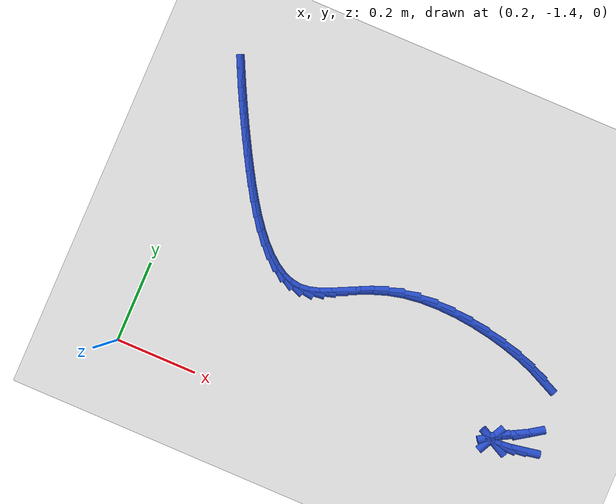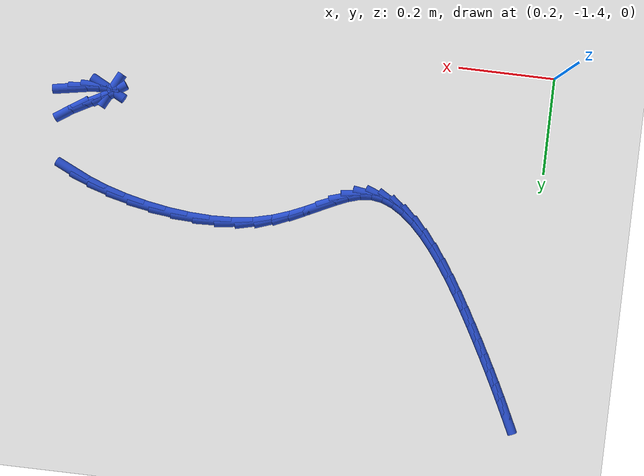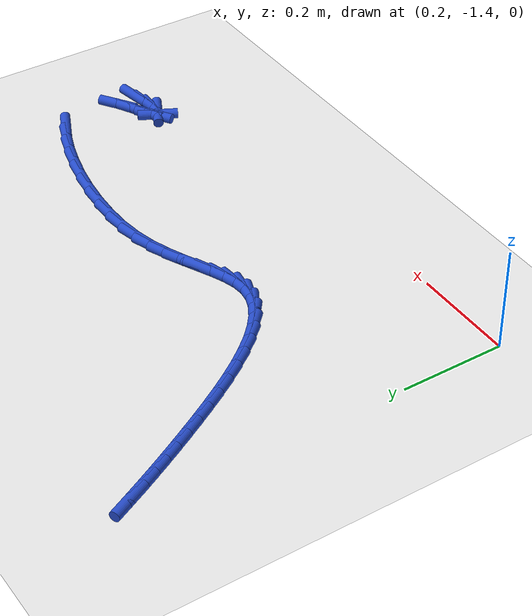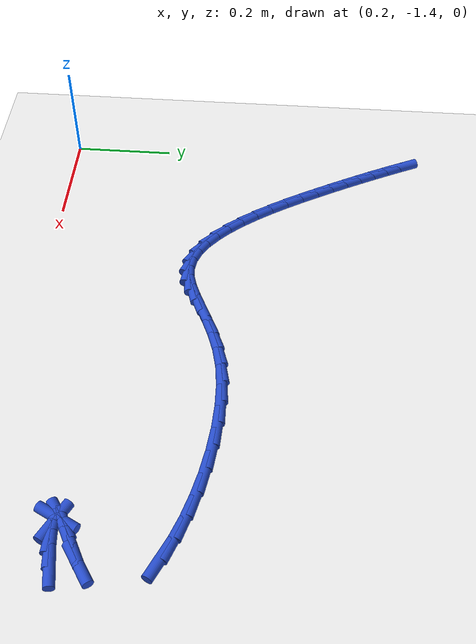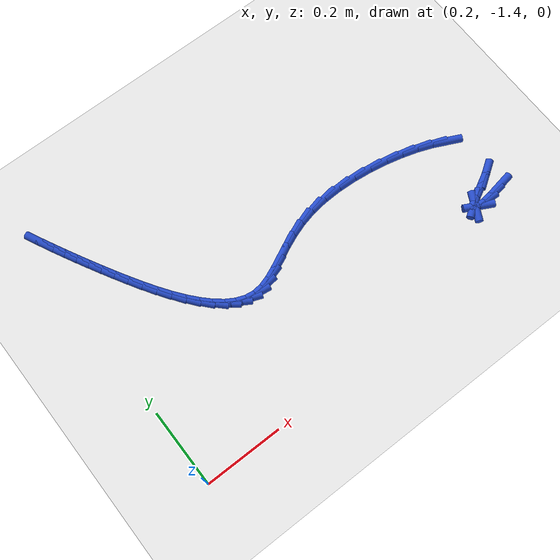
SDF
<sdf version="1.6">
 <world name="default">
  <model name="ground_plane">
   <static>1</static>
   <link name="link">
    <collision name="collision">
     <geometry><plane><normal>0 0 1</normal><size>100 100</size></plane></geometry>
     <surface><friction><ode><mu>100</mu><mu2>50</mu2></ode></friction></surface>
    </collision>
    <visual name="visual">
     <cast_shadows>0</cast_shadows>
     <geometry><plane><normal>0 0 1</normal><size>100 100</size></plane></geometry>
     <material>
      <script><uri>file://media/materials/scripts/gazebo.material</uri><name>Gazebo/WhiteGlow</name></script>
     </material>
    </visual>
   </link>
  </model>
  <model name="line">
   <link name="link_187">
    <pose>1.191309616961569 -1.2630237400490807 0.01 0 1.57 0.17707691168750558</pose>
    <collision name="collision">
     <geometry><cylinder><radius>0.01</radius><length>0.08</length></cylinder></geometry>
    </collision>
    <visual name="visual">
     <material>
      <script><name>Gazebo/Blue</name><uri>file://media/materials/scripts/gazebo.material</uri></script>
     </material>
     <geometry><cylinder><radius>0.01</radius><length>0.08</length></cylinder></geometry>
    </visual>
   </link>
   <link name="link_188">
    <pose>1.1593677288720559 -1.2687397807106846 0.01 0 1.57 0.10566307960177453</pose>
    <collision name="collision">
     <geometry><cylinder><radius>0.01</radius><length>0.08</length></cylinder></geometry>
    </collision>
    <visual name="visual">
     <material>
      <script><name>Gazebo/Blue</name><uri>file://media/materials/scripts/gazebo.material</uri></script>
     </material>
     <geometry><cylinder><radius>0.01</radius><length>0.08</length></cylinder></geometry>
    </visual>
   </link>
   <link name="link_189">
    <pose>1.1342848150735718 -1.2714000262739011 0.01 0 1.57 -0.029707009794796457</pose>
    <collision name="collision">
     <geometry><cylinder><radius>0.01</radius><length>0.08</length></cylinder></geometry>
    </collision>
    <visual name="visual">
     <material>
      <script><name>Gazebo/Blue</name><uri>file://media/materials/scripts/gazebo.material</uri></script>
     </material>
     <geometry><cylinder><radius>0.01</radius><length>0.08</length></cylinder></geometry>
    </visual>
   </link>
   <link name="link_190">
    <pose>1.1174234186374565 -1.270898977203138 0.01 0 1.57 -0.4777468391319427</pose>
    <collision name="collision">
     <geometry><cylinder><radius>0.01</radius><length>0.08</length></cylinder></geometry>
    </collision>
    <visual name="visual">
     <material>
      <script><name>Gazebo/Blue</name><uri>file://media/materials/scripts/gazebo.material</uri></script>
     </material>
     <geometry><cylinder><radius>0.01</radius><length>0.08</length></cylinder></geometry>
    </visual>
   </link>
   <link name="link_191">
    <pose>1.1101460826350518 -1.2671311339628026 0.01 0 1.57 1.0960960687855195</pose>
    <collision name="collision">
     <geometry><cylinder><radius>0.01</radius><length>0.08</length></cylinder></geometry>
    </collision>
    <visual name="visual">
     <material>
      <script><name>Gazebo/Blue</name><uri>file://media/materials/scripts/gazebo.material</uri></script>
     </material>
     <geometry><cylinder><radius>0.01</radius><length>0.08</length></cylinder></geometry>
    </visual>
   </link>
   <link name="link_192">
    <pose>1.1138153501376986 -1.259990997017302 0.01 0 1.57 0.5875301723997813</pose>
    <collision name="collision">
     <geometry><cylinder><radius>0.01</radius><length>0.08</length></cylinder></geometry>
    </collision>
    <visual name="visual">
     <material>
      <script><name>Gazebo/Blue</name><uri>file://media/materials/scripts/gazebo.material</uri></script>
     </material>
     <geometry><cylinder><radius>0.01</radius><length>0.08</length></cylinder></geometry>
    </visual>
   </link>
   <link name="link_193">
    <pose>1.1297514645753715 -1.2493777921155462 0.01 0 1.57 0.48207216692930877</pose>
    <collision name="collision">
     <geometry><cylinder><radius>0.01</radius><length>0.08</length></cylinder></geometry>
    </collision>
    <visual name="visual">
     <material>
      <script><name>Gazebo/Blue</name><uri>file://media/materials/scripts/gazebo.material</uri></script>
     </material>
     <geometry><cylinder><radius>0.01</radius><length>0.08</length></cylinder></geometry>
    </visual>
   </link>
   <link name="link_194">
    <pose>1.1562108048918047 -1.235533008697291 0.01 0 1.57 0.49464793670784096</pose>
    <collision name="collision">
     <geometry><cylinder><radius>0.01</radius><length>0.08</length></cylinder></geometry>
    </collision>
    <visual name="visual">
     <material>
      <script><name>Gazebo/Blue</name><uri>file://media/materials/scripts/gazebo.material</uri></script>
     </material>
     <geometry><cylinder><radius>0.01</radius><length>0.08</length></cylinder></geometry>
    </visual>
   </link>
   <link name="link_195">
    <pose>1.1863708173578504 -1.2192655027584773 0.01 0 1.57 0.5911538326314956</pose>
    <collision name="collision">
     <geometry><cylinder><radius>0.01</radius><length>0.08</length></cylinder></geometry>
    </collision>
    <visual name="visual">
     <material>
      <script><name>Gazebo/Blue</name><uri>file://media/materials/scripts/gazebo.material</uri></script>
     </material>
     <geometry><cylinder><radius>0.01</radius><length>0.08</length></cylinder></geometry>
    </visual>
   </link>
   <link name="link_202">
    <pose>1.1685086502630184 -1.0914842201221167 0.01 0 1.57 -0.438989581454728</pose>
    <collision name="collision">
     <geometry><cylinder><radius>0.01</radius><length>0.08</length></cylinder></geometry>
    </collision>
    <visual name="visual">
     <material>
      <script><name>Gazebo/Blue</name><uri>file://media/materials/scripts/gazebo.material</uri></script>
     </material>
     <geometry><cylinder><radius>0.01</radius><length>0.08</length></cylinder></geometry>
    </visual>
   </link>
   <link name="link_203">
    <pose>1.1349035236105796 -1.0757050420589882 0.01 0 1.57 -0.35557899221338407</pose>
    <collision name="collision">
     <geometry><cylinder><radius>0.01</radius><length>0.08</length></cylinder></geometry>
    </collision>
    <visual name="visual">
     <material>
      <script><name>Gazebo/Blue</name><uri>file://media/materials/scripts/gazebo.material</uri></script>
     </material>
     <geometry><cylinder><radius>0.01</radius><length>0.08</length></cylinder></geometry>
    </visual>
   </link>
   <link name="link_204">
    <pose>1.0966115000541528 -1.061484769458979 0.01 0 1.57 -0.2864356140167228</pose>
    <collision name="collision">
     <geometry><cylinder><radius>0.01</radius><length>0.08</length></cylinder></geometry>
    </collision>
    <visual name="visual">
     <material>
      <script><name>Gazebo/Blue</name><uri>file://media/materials/scripts/gazebo.material</uri></script>
     </material>
     <geometry><cylinder><radius>0.01</radius><length>0.08</length></cylinder></geometry>
    </visual>
   </link>
   <link name="link_205">
    <pose>1.0546823473897018 -1.0491351623092955 0.01 0 1.57 -0.22453991720115676</pose>
    <collision name="collision">
     <geometry><cylinder><radius>0.01</radius><length>0.08</length></cylinder></geometry>
    </collision>
    <visual name="visual">
     <material>
      <script><name>Gazebo/Blue</name><uri>file://media/materials/scripts/gazebo.material</uri></script>
     </material>
     <geometry><cylinder><radius>0.01</radius><length>0.08</length></cylinder></geometry>
    </visual>
   </link>
   <link name="link_206">
    <pose>1.0101658334131878 -1.0389679805971421 0.01 0 1.57 -0.16509188198484792</pose>
    <collision name="collision">
     <geometry><cylinder><radius>0.01</radius><length>0.08</length></cylinder></geometry>
    </collision>
    <visual name="visual">
     <material>
      <script><name>Gazebo/Blue</name><uri>file://media/materials/scripts/gazebo.material</uri></script>
     </material>
     <geometry><cylinder><radius>0.01</radius><length>0.08</length></cylinder></geometry>
    </visual>
   </link>
   <link name="link_207">
    <pose>0.964111725920573 -1.0312949843097243 0.01 0 1.57 -0.10419474783202996</pose>
    <collision name="collision">
     <geometry><cylinder><radius>0.01</radius><length>0.08</length></cylinder></geometry>
    </collision>
    <visual name="visual">
     <material>
      <script><name>Gazebo/Blue</name><uri>file://media/materials/scripts/gazebo.material</uri></script>
     </material>
     <geometry><cylinder><radius>0.01</radius><length>0.08</length></cylinder></geometry>
    </visual>
   </link>
   <link name="link_208">
    <pose>0.9175697927078199 -1.026427933434248 0.01 0 1.57 -0.03802745751433778</pose>
    <collision name="collision">
     <geometry><cylinder><radius>0.01</radius><length>0.08</length></cylinder></geometry>
    </collision>
    <visual name="visual">
     <material>
      <script><name>Gazebo/Blue</name><uri>file://media/materials/scripts/gazebo.material</uri></script>
     </material>
     <geometry><cylinder><radius>0.01</radius><length>0.08</length></cylinder></geometry>
    </visual>
   </link>
   <link name="link_209">
    <pose>0.8715898015708904 -1.024678587957918 0.01 0 1.57 0.03784950601155159</pose>
    <collision name="collision">
     <geometry><cylinder><radius>0.01</radius><length>0.08</length></cylinder></geometry>
    </collision>
    <visual name="visual">
     <material>
      <script><name>Gazebo/Blue</name><uri>file://media/materials/scripts/gazebo.material</uri></script>
     </material>
     <geometry><cylinder><radius>0.01</radius><length>0.08</length></cylinder></geometry>
    </visual>
   </link>
   <link name="link_210">
    <pose>0.8272215203057466 -1.02635870786794 0.01 0 1.57 0.1292622909140999</pose>
    <collision name="collision">
     <geometry><cylinder><radius>0.01</radius><length>0.08</length></cylinder></geometry>
    </collision>
    <visual name="visual">
     <material>
      <script><name>Gazebo/Blue</name><uri>file://media/materials/scripts/gazebo.material</uri></script>
     </material>
     <geometry><cylinder><radius>0.01</radius><length>0.08</length></cylinder></geometry>
    </visual>
   </link>
   <link name="link_211">
    <pose>0.7855147167083507 -1.031780053151519 0.01 0 1.57 0.23842669479757814</pose>
    <collision name="collision">
     <geometry><cylinder><radius>0.01</radius><length>0.08</length></cylinder></geometry>
    </collision>
    <visual name="visual">
     <material>
      <script><name>Gazebo/Blue</name><uri>file://media/materials/scripts/gazebo.material</uri></script>
     </material>
     <geometry><cylinder><radius>0.01</radius><length>0.08</length></cylinder></geometry>
    </visual>
   </link>
   <link name="link_212">
    <pose>0.7473364170805895 -1.041059281948171 0.01 0 1.57 0.3373506468126488</pose>
    <collision name="collision">
     <geometry><cylinder><radius>0.01</radius><length>0.08</length></cylinder></geometry>
    </collision>
    <visual name="visual">
     <material>
      <script><name>Gazebo/Blue</name><uri>file://media/materials/scripts/gazebo.material</uri></script>
     </material>
     <geometry><cylinder><radius>0.01</radius><length>0.08</length></cylinder></geometry>
    </visual>
   </link>
   <link name="link_213">
    <pose>0.7125636803930756 -1.053256125198358 0.01 0 1.57 0.40963877665692805</pose>
    <collision name="collision">
     <geometry><cylinder><radius>0.01</radius><length>0.08</length></cylinder></geometry>
    </collision>
    <visual name="visual">
     <material>
      <script><name>Gazebo/Blue</name><uri>file://media/materials/scripts/gazebo.material</uri></script>
     </material>
     <geometry><cylinder><radius>0.01</radius><length>0.08</length></cylinder></geometry>
    </visual>
   </link>
   <link name="link_214">
    <pose>0.6807398924847069 -1.0670740715733633 0.01 0 1.57 0.44926543091611565</pose>
    <collision name="collision">
     <geometry><cylinder><radius>0.01</radius><length>0.08</length></cylinder></geometry>
    </collision>
    <visual name="visual">
     <material>
      <script><name>Gazebo/Blue</name><uri>file://media/materials/scripts/gazebo.material</uri></script>
     </material>
     <geometry><cylinder><radius>0.01</radius><length>0.08</length></cylinder></geometry>
    </visual>
   </link>
   <link name="link_215">
    <pose>0.6514081841782332 -1.0812163374794252 0.01 0 1.57 0.4495273153882222</pose>
    <collision name="collision">
     <geometry><cylinder><radius>0.01</radius><length>0.08</length></cylinder></geometry>
    </collision>
    <visual name="visual">
     <material>
      <script><name>Gazebo/Blue</name><uri>file://media/materials/scripts/gazebo.material</uri></script>
     </material>
     <geometry><cylinder><radius>0.01</radius><length>0.08</length></cylinder></geometry>
    </visual>
   </link>
   <link name="link_216">
    <pose>0.624111686296405 -1.0943861393227827 0.01 0 1.57 0.4008933327329005</pose>
    <collision name="collision">
     <geometry><cylinder><radius>0.01</radius><length>0.08</length></cylinder></geometry>
    </collision>
    <visual name="visual">
     <material>
      <script><name>Gazebo/Blue</name><uri>file://media/materials/scripts/gazebo.material</uri></script>
     </material>
     <geometry><cylinder><radius>0.01</radius><length>0.08</length></cylinder></geometry>
    </visual>
   </link>
   <link name="link_217">
    <pose>0.5983935296619729 -1.1052866935096732 0.01 0 1.57 0.2897968204894617</pose>
    <collision name="collision">
     <geometry><cylinder><radius>0.01</radius><length>0.08</length></cylinder></geometry>
    </collision>
    <visual name="visual">
     <material>
      <script><name>Gazebo/Blue</name><uri>file://media/materials/scripts/gazebo.material</uri></script>
     </material>
     <geometry><cylinder><radius>0.01</radius><length>0.08</length></cylinder></geometry>
    </visual>
   </link>
   <link name="link_218">
    <pose>0.5737968450976878 -1.112621216446336 0.01 0 1.57 0.10291522307038281</pose>
    <collision name="collision">
     <geometry><cylinder><radius>0.01</radius><length>0.08</length></cylinder></geometry>
    </collision>
    <visual name="visual">
     <material>
      <script><name>Gazebo/Blue</name><uri>file://media/materials/scripts/gazebo.material</uri></script>
     </material>
     <geometry><cylinder><radius>0.01</radius><length>0.08</length></cylinder></geometry>
    </visual>
   </link>
   <link name="link_219">
    <pose>0.5498647634263001 -1.1150929245390084 0.01 0 1.57 -0.14310655217692475</pose>
    <collision name="collision">
     <geometry><cylinder><radius>0.01</radius><length>0.08</length></cylinder></geometry>
    </collision>
    <visual name="visual">
     <material>
      <script><name>Gazebo/Blue</name><uri>file://media/materials/scripts/gazebo.material</uri></script>
     </material>
     <geometry><cylinder><radius>0.01</radius><length>0.08</length></cylinder></geometry>
    </visual>
   </link>
   <link name="link_220">
    <pose>0.5262163949304122 -1.1116853947526364 0.01 0 1.57 -0.3682115571568557</pose>
    <collision name="collision">
     <geometry><cylinder><radius>0.01</radius><length>0.08</length></cylinder></geometry>
    </collision>
    <visual name="visual">
     <material>
      <script><name>Gazebo/Blue</name><uri>file://media/materials/scripts/gazebo.material</uri></script>
     </material>
     <geometry><cylinder><radius>0.01</radius><length>0.08</length></cylinder></geometry>
    </visual>
   </link>
   <link name="link_221">
    <pose>0.5028164736548678 -1.1026575391397306 0.01 0 1.57 -0.5459334276250387</pose>
    <collision name="collision">
     <geometry><cylinder><radius>0.01</radius><length>0.08</length></cylinder></geometry>
    </collision>
    <visual name="visual">
     <material>
      <script><name>Gazebo/Blue</name><uri>file://media/materials/scripts/gazebo.material</uri></script>
     </material>
     <geometry><cylinder><radius>0.01</radius><length>0.08</length></cylinder></geometry>
    </visual>
   </link>
   <link name="link_222">
    <pose>0.47972795830577364 -1.0886307140366165 0.01 0 1.57 -0.6809671573474669</pose>
    <collision name="collision">
     <geometry><cylinder><radius>0.01</radius><length>0.08</length></cylinder></geometry>
    </collision>
    <visual name="visual">
     <material>
      <script><name>Gazebo/Blue</name><uri>file://media/materials/scripts/gazebo.material</uri></script>
     </material>
     <geometry><cylinder><radius>0.01</radius><length>0.08</length></cylinder></geometry>
    </visual>
   </link>
   <link name="link_223">
    <pose>0.4570138143910353 -1.0702263008779314 0.01 0 1.57 -0.7827835446719937</pose>
    <collision name="collision">
     <geometry><cylinder><radius>0.01</radius><length>0.08</length></cylinder></geometry>
    </collision>
    <visual name="visual">
     <material>
      <script><name>Gazebo/Blue</name><uri>file://media/materials/scripts/gazebo.material</uri></script>
     </material>
     <geometry><cylinder><radius>0.01</radius><length>0.08</length></cylinder></geometry>
    </visual>
   </link>
   <link name="link_224">
    <pose>0.43473700741855836 -1.0480656810983124 0.01 0 1.57 -0.8600160008149283</pose>
    <collision name="collision">
     <geometry><cylinder><radius>0.01</radius><length>0.08</length></cylinder></geometry>
    </collision>
    <visual name="visual">
     <material>
      <script><name>Gazebo/Blue</name><uri>file://media/materials/scripts/gazebo.material</uri></script>
     </material>
     <geometry><cylinder><radius>0.01</radius><length>0.08</length></cylinder></geometry>
    </visual>
   </link>
   <link name="link_225">
    <pose>0.41296050289624897 -1.0227702361323967 0.01 0 1.57 -0.919139413442212</pose>
    <collision name="collision">
     <geometry><cylinder><radius>0.01</radius><length>0.08</length></cylinder></geometry>
    </collision>
    <visual name="visual">
     <material>
      <script><name>Gazebo/Blue</name><uri>file://media/materials/scripts/gazebo.material</uri></script>
     </material>
     <geometry><cylinder><radius>0.01</radius><length>0.08</length></cylinder></geometry>
    </visual>
   </link>
   <link name="link_226">
    <pose>0.39174726633201257 -0.9949613474148208 0.01 0 1.57 -0.9646872887889297</pose>
    <collision name="collision">
     <geometry><cylinder><radius>0.01</radius><length>0.08</length></cylinder></geometry>
    </collision>
    <visual name="visual">
     <material>
      <script><name>Gazebo/Blue</name><uri>file://media/materials/scripts/gazebo.material</uri></script>
     </material>
     <geometry><cylinder><radius>0.01</radius><length>0.08</length></cylinder></geometry>
    </visual>
   </link>
   <link name="link_227">
    <pose>0.37116026323375484 -0.9652603963802213 0.01 0 1.57 -0.9997451768950334</pose>
    <collision name="collision">
     <geometry><cylinder><radius>0.01</radius><length>0.08</length></cylinder></geometry>
    </collision>
    <visual name="visual">
     <material>
      <script><name>Gazebo/Blue</name><uri>file://media/materials/scripts/gazebo.material</uri></script>
     </material>
     <geometry><cylinder><radius>0.01</radius><length>0.08</length></cylinder></geometry>
    </visual>
   </link>
   <link name="link_228">
    <pose>0.35126245910938186 -0.9342887644632365 0.01 0 1.57 -1.0263618263299508</pose>
    <collision name="collision">
     <geometry><cylinder><radius>0.01</radius><length>0.08</length></cylinder></geometry>
    </collision>
    <visual name="visual">
     <material>
      <script><name>Gazebo/Blue</name><uri>file://media/materials/scripts/gazebo.material</uri></script>
     </material>
     <geometry><cylinder><radius>0.01</radius><length>0.08</length></cylinder></geometry>
    </visual>
   </link>
   <link name="link_229">
    <pose>0.3321168194667988 -0.9026678330985014 0.01 0 1.57 -1.0458232865594486</pose>
    <collision name="collision">
     <geometry><cylinder><radius>0.01</radius><length>0.08</length></cylinder></geometry>
    </collision>
    <visual name="visual">
     <material>
      <script><name>Gazebo/Blue</name><uri>file://media/materials/scripts/gazebo.material</uri></script>
     </material>
     <geometry><cylinder><radius>0.01</radius><length>0.08</length></cylinder></geometry>
    </visual>
   </link>
   <link name="link_230">
    <pose>0.31378630981391237 -0.8710189837206552 0.01 0 1.57 -1.0589750215223892</pose>
    <collision name="collision">
     <geometry><cylinder><radius>0.01</radius><length>0.08</length></cylinder></geometry>
    </collision>
    <visual name="visual">
     <material>
      <script><name>Gazebo/Blue</name><uri>file://media/materials/scripts/gazebo.material</uri></script>
     </material>
     <geometry><cylinder><radius>0.01</radius><length>0.08</length></cylinder></geometry>
    </visual>
   </link>
   <link name="link_231">
    <pose>0.2963301822759429 -0.8399445634824904 0.01 0 1.57 -1.0691973708864326</pose>
    <collision name="collision">
     <geometry><cylinder><radius>0.01</radius><length>0.08</length></cylinder></geometry>
    </collision>
    <visual name="visual">
     <material>
      <script><name>Gazebo/Blue</name><uri>file://media/materials/scripts/gazebo.material</uri></script>
     </material>
     <geometry><cylinder><radius>0.01</radius><length>0.08</length></cylinder></geometry>
    </visual>
   </link>
   <link name="link_232">
    <pose>0.2797374433169132 -0.8096868500726571 0.01 0 1.57 -1.0792862083093606</pose>
    <collision name="collision">
     <geometry><cylinder><radius>0.01</radius><length>0.08</length></cylinder></geometry>
    </collision>
    <visual name="visual">
     <material>
      <script><name>Gazebo/Blue</name><uri>file://media/materials/scripts/gazebo.material</uri></script>
     </material>
     <geometry><cylinder><radius>0.01</radius><length>0.08</length></cylinder></geometry>
    </visual>
   </link>
   <link name="link_233">
    <pose>0.26393436859297814 -0.7801665718059495 0.01 0 1.57 -1.0892300844564968</pose>
    <collision name="collision">
     <geometry><cylinder><radius>0.01</radius><length>0.08</length></cylinder></geometry>
    </collision>
    <visual name="visual">
     <material>
      <script><name>Gazebo/Blue</name><uri>file://media/materials/scripts/gazebo.material</uri></script>
     </material>
     <geometry><cylinder><radius>0.01</radius><length>0.08</length></cylinder></geometry>
    </visual>
   </link>
   <link name="link_234">
    <pose>0.24884502938250452 -0.7512931576640024 0.01 0 1.57 -1.0989061328863445</pose>
    <collision name="collision">
     <geometry><cylinder><radius>0.01</radius><length>0.08</length></cylinder></geometry>
    </collision>
    <visual name="visual">
     <material>
      <script><name>Gazebo/Blue</name><uri>file://media/materials/scripts/gazebo.material</uri></script>
     </material>
     <geometry><cylinder><radius>0.01</radius><length>0.08</length></cylinder></geometry>
    </visual>
   </link>
   <link name="link_235">
    <pose>0.23439349696385925 -0.7229760366284508 0.01 0 1.57 -1.108184609223563</pose>
    <collision name="collision">
     <geometry><cylinder><radius>0.01</radius><length>0.08</length></cylinder></geometry>
    </collision>
    <visual name="visual">
     <material>
      <script><name>Gazebo/Blue</name><uri>file://media/materials/scripts/gazebo.material</uri></script>
     </material>
     <geometry><cylinder><radius>0.01</radius><length>0.08</length></cylinder></geometry>
    </visual>
   </link>
   <link name="link_236">
    <pose>0.22050384261540887 -0.695124637680929 0.01 0 1.57 -1.1169330025764124</pose>
    <collision name="collision">
     <geometry><cylinder><radius>0.01</radius><length>0.08</length></cylinder></geometry>
    </collision>
    <visual name="visual">
     <material>
      <script><name>Gazebo/Blue</name><uri>file://media/materials/scripts/gazebo.material</uri></script>
     </material>
     <geometry><cylinder><radius>0.01</radius><length>0.08</length></cylinder></geometry>
    </visual>
   </link>
  </model>
 </world>
</sdf>
